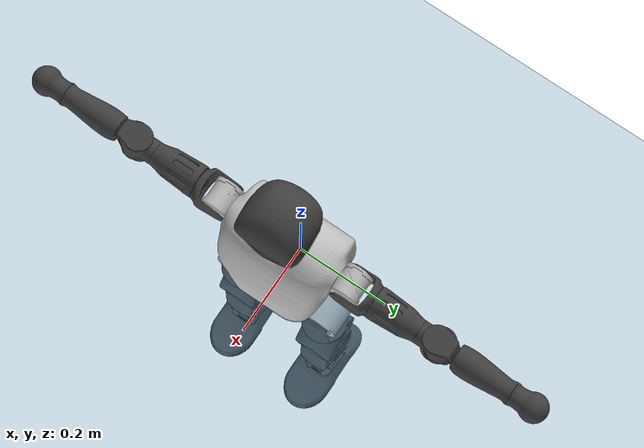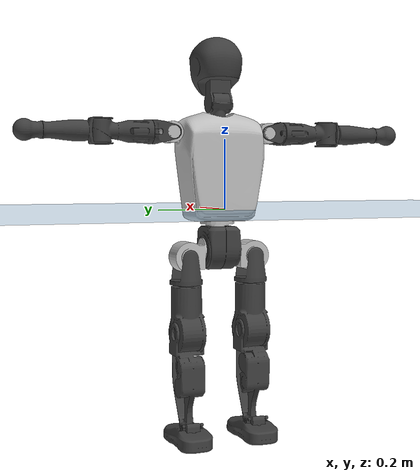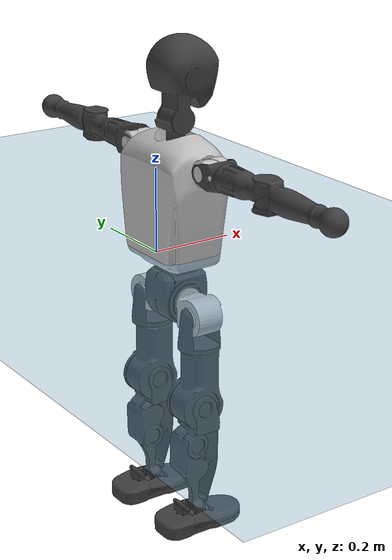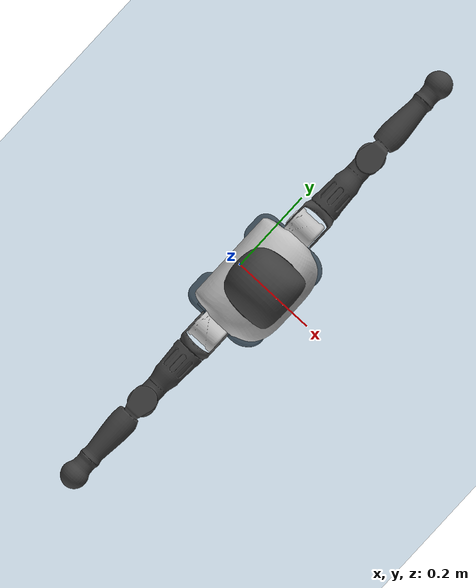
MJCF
<mujoco model="T1">
  <compiler angle="radian" assetdir="assets" balanceinertia="true" inertiafromgeom="false"/>

  <option timestep="0.005" density="1.2" viscosity="2e-05"/>

  <size nkey="1"/>

  <visual>
    <quality shadowsize="8192"/>
    <map shadowclip="0.5"/>
  </visual>

  <default>
    <default class="/">
      <joint armature="0.01" damping="0.01" frictionloss="0.1"/>
      <geom contype="0" conaffinity="0" group="1" solref="-1000 -80"/>
      <site size="0.01 0.005 0.005" group="5"/>
      <general forcelimited="true" biastype="affine" gainprm="25" biasprm="0 -25 -0.6"/>
      <default class="t1">
        <geom rgba="0.25 0.25 0.25 1"/>
        <default class="visual">
          <geom type="mesh" group="2"/>
        </default>
        <default class="collision">
          <geom group="3"/>
        </default>
        <default class="foot">
          <geom size="0.1115 0.05 0.015" type="box" condim="6" group="4" priority="1" solimp="0.015 1 0.015"/>
        </default>
        <default class="reward_collision_sphere">
          <geom group="5" rgba="1 0 0 1"/>
        </default>
      </default>
    </default>
  </default>

  <asset>
    <texture type="skybox" colorspace="auto" name="//unnamed_texture_0" builtin="gradient" rgb1="0.95 0.95 0.95" rgb2="0.95 0.95 0.95" width="100" height="600"/>
    <texture type="2d" colorspace="auto" name="texplane" builtin="checker" rgb1="0.345 0.575 0.748" rgb2="0.345 0.575 0.748" markrgb="1 1 1" width="512" height="512"/>
    <material name="MatPlane" class="/" texture="texplane" texuniform="true" texrepeat="2 2" specular="0.9"/>
    <mesh name="Trunk" class="/" file="Trunk.stl"/>
    <mesh name="H1" class="/" file="H1.stl"/>
    <mesh name="H2" class="/" file="H2.stl"/>
    <mesh name="AL1" class="/" file="AL1.stl"/>
    <mesh name="AL2" class="/" file="AL2.stl"/>
    <mesh name="AL3" class="/" file="AL3.stl"/>
    <mesh name="left_hand_link" class="/" file="left_hand_link.stl"/>
    <mesh name="AR1" class="/" file="AR1.stl"/>
    <mesh name="AR2" class="/" file="AR2.stl"/>
    <mesh name="AR3" class="/" file="AR3.stl"/>
    <mesh name="right_hand_link" class="/" file="right_hand_link.stl"/>
    <mesh name="Waist" class="/" file="Waist.stl"/>
    <mesh name="Hip_Pitch_Left" class="/" file="Hip_Pitch_Left.stl"/>
    <mesh name="Hip_Roll_Left" class="/" file="Hip_Roll_Left.stl"/>
    <mesh name="Hip_Yaw_Left" class="/" file="Hip_Yaw_Left.stl"/>
    <mesh name="Shank_Left" class="/" file="Shank_Left.stl"/>
    <mesh name="Ankle_Cross_Left" class="/" file="Ankle_Cross_Left.stl"/>
    <mesh name="left_foot_link" class="/" file="left_foot_link.stl"/>
    <mesh name="Hip_Pitch_Right" class="/" file="Hip_Pitch_Right.stl"/>
    <mesh name="Hip_Roll_Right" class="/" file="Hip_Roll_Right.stl"/>
    <mesh name="Hip_Yaw_Right" class="/" file="Hip_Yaw_Right.stl"/>
    <mesh name="Shank_Right" class="/" file="Shank_Right.stl"/>
    <mesh name="Ankle_Cross_Right" class="/" file="Ankle_Cross_Right.stl"/>
    <mesh name="right_foot_link" class="/" file="right_foot_link.stl"/>
  </asset>

  <worldbody>
    <geom name="floor" class="/" size="100 100 0.125" type="plane" group="0" material="MatPlane"/>
    <light name="toplight_shadow" class="/" pos="0 0 5" dir="0.0990148 0.0990148 -0.990148" type="directional" ambient="0.04 0.04 0.04" diffuse="0.55 0.55 0.55" specular="0.12 0.12 0.12"/>
    <light name="toplight_fill" class="/" pos="0 0 5" dir="0.0990148 0.0990148 -0.990148" type="directional" castshadow="false" ambient="0.04 0.04 0.04" diffuse="0.3 0.3 0.3" specular="0.08 0.08 0.08"/>
    <body name="trunk" childclass="t1" pos="-0.000279801 -0.000446823 -0.000742808" quat="1 -0.00010486 0.000201358 -0.000130282">
      <inertial pos="0.0472043 -0.000592278 0.105331" quat="0.99996 9.56338e-06 -0.00898713 -1.75818e-05" mass="9.66356" diaginertia="0.0399717 0.0582005 0.0578651"/>
      <joint name="//unnamed_joint_0" type="free" armature="0" damping="0" frictionloss="0"/>
      <geom name="//unnamed_geom_1" class="visual" rgba="0.76 0.76 0.76 1" mesh="Trunk"/>
      <geom name="//unnamed_geom_2" class="collision" size="0.0700295 0.0933727 0.140059" pos="0.0508803 0 0.120828" type="box"/>
      <geom name="//unnamed_geom_3" class="reward_collision_sphere" size="0.107379" pos="0.0508803 0 0.10069"/>
      <geom name="//unnamed_geom_4" class="reward_collision_sphere" size="0.0140059" pos="0.0508803 0.0804338 0"/>
      <geom name="//unnamed_geom_5" class="reward_collision_sphere" size="0.0140059" pos="0.0508803 -0.0804338 0"/>
      <geom name="//unnamed_geom_6" class="reward_collision_sphere" size="0.0140059" pos="0.0508803 0.101252 0.181241"/>
      <geom name="//unnamed_geom_7" class="reward_collision_sphere" size="0.0140059" pos="0.0508803 -0.101252 0.181241"/>
      <site name="imu" pos="-0.00418627 0.00497305 -0.00371974" size="0.00933727"/>
      <camera name="track" pos="0 -1.89256 0" quat="0.707107 0.707107 0 0" mode="trackcom"/>
      <camera name="ego_camera" pos="0.103457 0 0.422896" quat="-0.5 -0.5 0.5 0.5"/>
      <body name="H1" pos="0.0525567 -0.00060644 0.244881" quat="1 -1.32042e-05 -9.14043e-05 -0.000360612">
        <inertial pos="-0.00112307 -0.00166856 0.0574672" quat="0.763956 -0.0121917 0.0040084 0.645141" mass="0.36786" diaginertia="0.000106651 0.00016974 0.000155633"/>
        <joint name="AAHead_yaw" pos="0 0 0" axis="0.0031839 0.00331969 0.999989" stiffness="0.00237482" range="-1.56008 1.57498" armature="0.00974939" damping="0.00471709" frictionloss="0.0941399"/>
        <geom name="//unnamed_geom_8" class="visual" mesh="H1"/>
        <body name="H2" pos="0.000768512 0.000668363 0.0620924" quat="1 0.000232207 -0.00038009 -0.000219935">
          <inertial pos="0.0062142 0.00096395 0.0995834" quat="0.988502 0.106256 -0.0723728 -0.0795986" mass="0.513335" diaginertia="0.000891335 0.00146838 0.00176574"/>
          <joint name="Head_pitch" pos="0 0 0" axis="0.00143095 -0.999997 -0.00209134" range="-1.23196 0.367686" armature="0.00889687" damping="0.00997263" frictionloss="0.0915942"/>
          <geom name="//unnamed_geom_9" class="visual" mesh="H2"/>
          <geom name="//unnamed_geom_10" class="collision" size="0.0746982" pos="0.00848005 0 0.110759"/>
          <geom name="//unnamed_geom_11" class="reward_collision_sphere" size="0.0840354" pos="0.0169601 0 0.10069"/>
        </body>
      </body>
      <body name="AL1" pos="0.0494131 0.101065 0.220266" quat="1 -8.21823e-05 0.000427021 -8.81679e-05">
        <inertial pos="-0.000665256 0.0421744 1.91207e-05" quat="0.505907 0.496278 -0.503777 0.493939" mass="0.430851" diaginertia="0.000593139 0.000988293 0.00030541"/>
        <joint name="Left_Shoulder_Pitch" pos="0 0 0" axis="-0.000219587 0.999994 -0.00340397" range="-3.32434 1.21815" armature="0.00942948" damping="0.00584998" frictionloss="0.0973162"/>
        <geom name="//unnamed_geom_12" class="visual" rgba="0.76 0.76 0.76 1" mesh="AL1"/>
        <body name="AL2" pos="0.00178216 0.0444397 3.40551e-05" quat="1 4.39624e-05 -9.25397e-05 -6.02965e-06">
          <inertial pos="0.00361226 0.0355142 -1.16676e-07" quat="0.489039 0.51096 -0.488431 0.511073" mass="0.129503" diaginertia="0.000174005 0.000258181 0.000179004"/>
          <joint name="Left_Shoulder_Roll" pos="0 0 0" axis="-0.999996 0.00162801 0.00227615" range="-1.55801 1.75499" armature="0.00898912" damping="0.00897111" frictionloss="0.0938953"/>
          <geom name="//unnamed_geom_13" class="visual" mesh="AL2"/>
          <body name="AL3" pos="0.000344588 0.0572864 0.000103752" quat="1 2.99216e-05 0.000129077 -0.000131343">
            <inertial pos="-0.00105875 0.0807411 -0.000313478" quat="0.707961 0.70624 0.00174486 -0.00363914" mass="0.828875" diaginertia="0.00570863 0.00965002 0.00063596"/>
            <joint name="Left_Elbow_Pitch" pos="0 0 0" axis="0.00598152 -0.999982 -0.000521532" range="-2.25545 2.26398" armature="0.00869284" damping="0.00222141" frictionloss="0.0961382"/>
            <geom name="//unnamed_geom_14" class="visual" mesh="AL3"/>
            <geom name="//unnamed_geom_15" class="collision" size="0.0280118 0.0700295" pos="0 0.047314 0" quat="0.707105 0.707108 0 0" type="cylinder"/>
            <geom name="//unnamed_geom_16" class="reward_collision_sphere" size="0.0336142"/>
            <body name="left_hand_link" pos="0.00110981 0.139082 8.5743e-05" quat="1 0.000257705 3.83571e-06 0.000367028">
              <inertial pos="0.000239106 0.104313 -0.000499204" quat="0.707865 0.706347 -6.43607e-05 -0.000196554" mass="0.263913" diaginertia="0.00358204 0.00618514 0.000218753"/>
              <joint name="Left_Elbow_Yaw" pos="0 0 0" axis="0.00668014 0.00343391 0.999972" stiffness="0.0023646" range="-2.42737 -0.00243358" armature="0.00970637" damping="0.0115437" frictionloss="0.0976745"/>
              <geom name="//unnamed_geom_17" class="visual" mesh="left_hand_link"/>
              <geom name="//unnamed_geom_18" class="collision" size="0.0280118 0.0817011" pos="0 0.123016 0" quat="0.707105 0.707108 0 0" type="cylinder"/>
              <geom name="//unnamed_geom_19" class="reward_collision_sphere" size="0.0466864"/>
              <geom name="//unnamed_geom_20" class="reward_collision_sphere" size="0.0326805" pos="0 0.104091 0"/>
              <geom name="//unnamed_geom_21" class="reward_collision_sphere" size="0.0326805" pos="0 0.20345 0"/>
            </body>
          </body>
        </body>
      </body>
      <body name="AR1" pos="0.0482484 -0.100784 0.219993" quat="1 3.70671e-05 0.000294902 -0.000250645">
        <inertial pos="-0.00175066 -0.0431302 -0.000650871" quat="0.506272 0.492697 -0.501084 0.499853" mass="0.42466" diaginertia="0.000603954 0.000988761 0.000304996"/>
        <joint name="Right_Shoulder_Pitch" pos="0 0 0" axis="0.000171433 -0.999999 0.0015722" range="-1.2246 3.30618" armature="0.00928444" damping="0.00465151" frictionloss="0.0962405"/>
        <geom name="//unnamed_geom_22" class="visual" rgba="0.76 0.76 0.76 1" mesh="AR1"/>
        <body name="AR2" pos="-0.000734432 -0.0434635 0.000196052" quat="1 -2.19394e-06 -4.77264e-06 -0.000198601">
          <inertial pos="0.00272874 -0.0354509 -0.000552766" quat="0.51165 0.48799 -0.512062 0.487722" mass="0.130458" diaginertia="0.000175796 0.000263398 0.000180747"/>
          <joint name="Right_Shoulder_Roll" pos="0 0 0" axis="-0.999994 -0.00304105 -0.00151474" stiffness="0.00343707" range="-1.75874 1.59186" armature="0.00951043" damping="0.00372504" frictionloss="0.0957475"/>
          <geom name="//unnamed_geom_23" class="visual" mesh="AR2"/>
          <body name="AR3" pos="-0.000662764 -0.0579641 0.000382904" quat="1 -2.54346e-05 5.11982e-05 0.000102935">
            <inertial pos="-0.000337793 -0.0815781 2.44481e-05" quat="0.709283 0.704922 -0.00155714 -6.09966e-05" mass="0.83476" diaginertia="0.00558979 0.00979242 0.000641512"/>
            <joint name="Right_Elbow_Pitch" pos="0 0 0" axis="0.00398366 0.999992 0.000508508" range="-2.28937 2.278" armature="0.00936199" damping="0.00695091" frictionloss="0.0931328"/>
            <geom name="//unnamed_geom_24" class="visual" mesh="AR3"/>
            <geom name="//unnamed_geom_25" class="collision" size="0.0280118 0.0700295" pos="0 -0.047314 0" quat="0.707105 0.707108 0 0" type="cylinder"/>
            <geom name="//unnamed_geom_26" class="reward_collision_sphere" size="0.0336142"/>
            <body name="right_hand_link" pos="-0.000969427 -0.139234 -0.000786053" quat="1 0.000216362 0.000177952 -0.00020019">
              <inertial pos="8.83786e-05 -0.104075 0.00136851" quat="0.706774 0.707439 0.000346805 0.000228015" mass="0.267654" diaginertia="0.00358606 0.0061684 0.000224048"/>
              <joint name="Right_Elbow_Yaw" pos="0 0 0" axis="0.00306586 0.00238602 0.999992" range="0.00890777 2.4354" armature="0.00942935" damping="0.011542" frictionloss="0.0899703"/>
              <geom name="//unnamed_geom_27" class="visual" mesh="right_hand_link"/>
              <geom name="//unnamed_geom_28" class="collision" size="0.0280118 0.0817011" pos="0 -0.123016 0" quat="0.707105 0.707108 0 0" type="cylinder"/>
              <geom name="//unnamed_geom_29" class="reward_collision_sphere" size="0.0466864"/>
              <geom name="//unnamed_geom_30" class="reward_collision_sphere" size="0.0326805" pos="0 -0.104091 0"/>
              <geom name="//unnamed_geom_31" class="reward_collision_sphere" size="0.0326805" pos="0 -0.20345 0"/>
            </body>
          </body>
        </body>
      </body>
      <body name="Waist" pos="0.0535172 -0.00180336 -0.116046" quat="1 3.29868e-05 -7.21624e-06 8.05778e-06">
        <inertial pos="0.000362259 -0.00126679 0.00744616" quat="0.983781 0.00021891 -0.179343 0.00329853" mass="2.11318" diaginertia="0.0023304 0.00403121 0.00487432"/>
        <joint name="Waist" pos="0 0 0" axis="0.00140726 0.00481055 0.999987" range="-1.57725 1.57538" armature="0.00975723" damping="0.0168693" frictionloss="0.0929163"/>
        <geom name="//unnamed_geom_32" class="visual" mesh="Waist"/>
        <body name="Hip_Pitch_Left" pos="-0.000231818 0.099943 -0.000677402" quat="1 0.000112166 0.000759097 -0.000639566">
          <inertial pos="0.00134037 -0.00636321 -0.0180481" quat="0.974857 0.222382 0.0139504 0.00238298" mass="0.811283" diaginertia="0.000781419 0.00109033 0.00129486"/>
          <joint name="Left_Hip_Pitch" pos="0 0 0" axis="0.00231197 0.999996 -0.00140792" stiffness="0.00174117" range="-1.80051 1.56553" armature="0.00950852" damping="0.00804237" frictionloss="0.0982918"/>
          <geom name="//unnamed_geom_33" class="visual" rgba="0.76 0.76 0.76 1" mesh="Hip_Pitch_Left"/>
          <body name="Hip_Roll_Left" pos="0.00144444 0.000803699 -0.0218891" quat="1 -0.000547122 -0.000109481 -0.000223059">
            <inertial pos="0.000477343 0.000992655 -0.0548821" quat="0.706416 -0.00628813 -0.00608283 0.707742" mass="0.316718" diaginertia="0.00075979 0.0011509 0.000532943"/>
            <joint name="Left_Hip_Roll" pos="0 0 0" axis="-0.999998 0.000426114 0.00170352" range="-1.56663 0.197127" armature="0.009062" damping="0.0100394" frictionloss="0.0929765"/>
            <geom name="//unnamed_geom_34" class="visual" mesh="Hip_Roll_Left"/>
            <geom name="//unnamed_geom_35" class="reward_collision_sphere" size="0.051355"/>
            <body name="Hip_Yaw_Left" pos="0.00212694 -0.00148325 -0.0838486" quat="1 -0.0001069 3.74398e-06 -7.58085e-05">
              <inertial pos="-0.00625432 0.000955614 -0.0892723" quat="0.696849 -0.0338498 -0.0316845 0.715718" mass="1.7478" diaginertia="0.0111726 0.0190074 0.00267076"/>
              <joint name="Left_Hip_Yaw" pos="0 0 0" axis="0.000980148 0.00130001 -0.999999" range="-1.00235 1.01169" armature="0.0093721" damping="0.014017" frictionloss="0.0897569"/>
              <geom name="//unnamed_geom_36" class="visual" mesh="Hip_Yaw_Left"/>
              <geom name="//unnamed_geom_37" class="collision" size="0.0466864 0.0746982" type="cylinder"/>
              <body name="Shank_Left" pos="-0.0101184 0.000599261 -0.134459" quat="1 -0.00012662 -5.41909e-05 -0.000149633">
                <inertial pos="-0.0048766 0.00142663 -0.12596" quat="0.997622 0.00370764 -0.0238305 0.0645596" mass="1.39387" diaginertia="0.0151786 0.0257845 0.00191407"/>
                <joint name="Left_Knee_Pitch" pos="0 0 0" axis="-0.00229364 0.999997 -0.00130511" range="0.000255171 2.33692" armature="0.00914236" damping="0.0131562" frictionloss="0.0937775"/>
                <geom name="//unnamed_geom_38" class="visual" mesh="Shank_Left"/>
                <geom name="//unnamed_geom_39" class="collision" size="0.0466864 0.0700295" pos="0 0 -0.120828" type="cylinder"/>
                <geom name="//unnamed_geom_40" class="reward_collision_sphere" size="0.0606923"/>
                <body name="Ankle_Cross_Left" pos="-0.00103291 0.000245996 -0.282215" quat="1 -1.04137e-05 -0.000125428 -0.000374321">
                  <inertial pos="-0.00326183 -0.000148071 -0.0083079" quat="0.442738 0.55269 0.550355 0.442296" mass="0.0602166" diaginertia="1.26993e-05 1.95049e-05 1.17528e-05"/>
                  <joint name="Left_Ankle_Pitch" pos="0 0 0" axis="-9.83943e-05 1 6.20223e-05" range="-0.891119 0.366521" armature="0.00891544" damping="0.000593508" frictionloss="0.089199"/>
                  <geom name="//unnamed_geom_41" class="visual" mesh="Ankle_Cross_Left"/>
                  <body name="left_foot_link" pos="0.000340028 0.000714497 -0.0127645" quat="1 -2.4813e-05 -0.0003393 0.000451252">
                    <inertial pos="-8.96787e-05 0.000320172 -0.00907943" quat="-0.00114509 0.620436 -0.000467071 0.784256" mass="0.570173" diaginertia="0.00121951 0.0018387 0.00234837"/>
                    <joint name="Left_Ankle_Roll" pos="0 0 0" axis="-0.999993 0.00201571 0.00315221" range="-0.441746 0.462305" armature="0.00941574" damping="0.00830646" frictionloss="0.100812"/>
                    <geom name="//unnamed_geom_42" class="visual" mesh="left_foot_link"/>
                    <geom name="left_foot" class="foot" size="0.103461 0.0458653 0.015131" pos="0.00848005 0 -0.0151034"/>
                    <geom name="//unnamed_geom_44" class="reward_collision_sphere" size="0.0485538" pos="0.00848005 0 -0.0151034"/>
                    <geom name="//unnamed_geom_45" class="reward_collision_sphere" size="0.0280118" pos="0.0805605 -0.0217644 -0.0151034"/>
                    <geom name="//unnamed_geom_46" class="reward_collision_sphere" size="0.0280118" pos="-0.0593603 -0.0217644 -0.0151034"/>
                    <site name="left_foot" class="foot" pos="0.00848005 0 -0.0151034" size="0.00933727"/>
                  </body>
                </body>
              </body>
            </body>
          </body>
        </body>
        <body name="Hip_Pitch_Right" pos="-0.00037637 -0.100335 4.30269e-05" quat="1 0.000157631 0.000144779 4.39033e-05">
          <inertial pos="0.00100236 0.00716731 -0.0171475" quat="0.973806 -0.226603 0.016418 -0.00918843" mass="0.824978" diaginertia="0.000779768 0.00107961 0.00127926"/>
          <joint name="Right_Hip_Pitch" pos="0 0 0" axis="-0.0017607 -0.999998 9.62099e-05" range="-1.57585 1.81824" armature="0.00917967" damping="0.00706363" frictionloss="0.0943208"/>
          <geom name="//unnamed_geom_47" class="visual" rgba="0.76 0.76 0.76 1" mesh="Hip_Pitch_Right"/>
          <body name="Hip_Roll_Right" pos="-0.000594277 -0.000328248 -0.0206894" quat="1 -3.04903e-05 -3.44211e-05 -4.52503e-06">
            <inertial pos="0.00116218 -0.00115588 -0.0541423" quat="0.70613 -0.0051275 -0.0074619 0.708024" mass="0.31535" diaginertia="0.000763824 0.00115132 0.000532669"/>
            <joint name="Right_Hip_Roll" pos="0 0 0" axis="-1 0.00029148 -0.000829382" range="-0.211868 1.5672" armature="0.00980437" damping="0.0060289" frictionloss="0.0943415"/>
            <geom name="//unnamed_geom_48" class="visual" mesh="Hip_Roll_Right"/>
            <geom name="//unnamed_geom_49" class="reward_collision_sphere" size="0.051355"/>
            <body name="Hip_Yaw_Right" pos="5.73399e-05 0.00135937 -0.0827217" quat="1 -1.97465e-05 -2.19907e-06 8.81916e-06">
              <inertial pos="-0.00518863 -0.000326821 -0.0911873" quat="0.714117 -0.0318893 -0.0339479 0.698475" mass="1.7786" diaginertia="0.0113185 0.0194113 0.00271194"/>
              <joint name="Right_Hip_Yaw" pos="0 0 0" axis="0.00434354 0.00220201 -0.999988" stiffness="0.000608262" range="-0.999271 1.02257" armature="0.00935585" damping="0.0124775" frictionloss="0.092891"/>
              <geom name="//unnamed_geom_50" class="visual" mesh="Hip_Yaw_Right"/>
              <geom name="//unnamed_geom_51" class="collision" size="0.0466864 0.0746982" type="cylinder"/>
              <body name="Shank_Right" pos="-0.0122612 -0.000705865 -0.135798" quat="1 -4.16819e-06 -3.73742e-05 -1.23147e-05">
                <inertial pos="-0.0038182 -0.0001524 -0.122638" quat="0.99926 -0.000668423 -0.0234713 -0.0304805" mass="1.46863" diaginertia="0.0154209 0.0266023 0.00203583"/>
                <joint name="Right_Knee_Pitch" pos="0 0 0" axis="0.00897377 -0.999955 0.00315118" range="-2.33682 0.00689403" armature="0.00895895" damping="0.0057504" frictionloss="0.0921052"/>
                <geom name="//unnamed_geom_52" class="visual" mesh="Shank_Right"/>
                <geom name="//unnamed_geom_53" class="collision" size="0.0466864 0.0700295" pos="0 0 -0.120828" type="cylinder"/>
                <geom name="//unnamed_geom_54" class="reward_collision_sphere" size="0.0606923"/>
                <body name="Ankle_Cross_Right" pos="0.00140608 -0.0018279 -0.282364" quat="1 0.000453314 0.000129209 0.00015255">
                  <inertial pos="-0.0034771 -6.41922e-06 -0.00853214" quat="0.442251 0.551457 0.55143 0.442983" mass="0.0591314" diaginertia="1.26279e-05 1.94437e-05 1.17941e-05"/>
                  <joint name="Right_Ankle_Pitch" pos="0 0 0" axis="-0.000951438 -0.999998 0.00155072" range="-0.33133 0.890293" armature="0.00939786" damping="0.00635314" frictionloss="0.0935637"/>
                  <geom name="//unnamed_geom_55" class="visual" mesh="Ankle_Cross_Right"/>
                  <body name="right_foot_link" pos="1.57914e-05 -0.00087501 -0.011478" quat="1 -2.09815e-06 -4.51932e-05 -6.50429e-05">
                    <inertial pos="0.000306559 -0.000474093 -0.00925985" quat="0.000187673 0.620082 0.000754389 0.784536" mass="0.557212" diaginertia="0.00116873 0.00182364 0.00227473"/>
                    <joint name="Right_Ankle_Roll" pos="0 0 0" axis="-1 -0.000149966 -0.000501178" range="-0.457763 0.458012" armature="0.00920188" damping="0.00921406" frictionloss="0.0947383"/>
                    <geom name="//unnamed_geom_56" class="visual" mesh="right_foot_link"/>
                    <geom name="right_foot" class="foot" size="0.0988084 0.0450059 0.014009" pos="0.00848005 0 -0.0151034"/>
                    <geom name="//unnamed_geom_58" class="reward_collision_sphere" size="0.0373491"/>
                    <geom name="//unnamed_geom_59" class="reward_collision_sphere" size="0.0280118" pos="0.00848005 0 -0.0151034"/>
                    <geom name="//unnamed_geom_60" class="reward_collision_sphere" size="0.0280118" pos="0.0805605 0.0217644 -0.0151034"/>
                    <geom name="//unnamed_geom_61" class="reward_collision_sphere" size="0.0280118" pos="-0.0593603 0.0217644 -0.0151034"/>
                    <site name="right_foot" class="foot" pos="0.00848005 0 -0.0151034" size="0.00933727"/>
                  </body>
                </body>
              </body>
            </body>
          </body>
        </body>
      </body>
    </body>
  </worldbody>

  <contact>
    <pair class="/" geom1="floor" geom2="left_foot" name="//unnamed_contact_0"/>
    <pair class="/" geom1="floor" geom2="right_foot" name="//unnamed_contact_1"/>
  </contact>

  <actuator>
    <general name="AAHead_yaw" class="/" joint="AAHead_yaw" forcerange="-6.59015 6.59015" gainprm="22.7145" biasprm="0 -22.7145 -0.561677"/>
    <general name="Head_pitch" class="/" joint="Head_pitch" forcerange="-6.5839 6.5839" gainprm="22.7145" biasprm="0 -22.7145 -0.561677"/>
    <general name="Left_Shoulder_Pitch" class="/" joint="Left_Shoulder_Pitch" forcerange="-16.9132 16.9132" gainprm="22.7145" biasprm="0 -22.7145 -0.561677"/>
    <general name="Left_Shoulder_Roll" class="/" joint="Left_Shoulder_Roll" forcerange="-17.3065 17.3065" gainprm="22.7145" biasprm="0 -22.7145 -0.561677"/>
    <general name="Left_Elbow_Pitch" class="/" joint="Left_Elbow_Pitch" forcerange="-16.1958 16.1958" gainprm="22.7145" biasprm="0 -22.7145 -0.561677"/>
    <general name="Left_Elbow_Yaw" class="/" joint="Left_Elbow_Yaw" forcerange="-17.2165 17.2165" gainprm="22.7145" biasprm="0 -22.7145 -0.561677"/>
    <general name="Right_Shoulder_Pitch" class="/" joint="Right_Shoulder_Pitch" forcerange="-17.3586 17.3586" gainprm="22.7145" biasprm="0 -22.7145 -0.561677"/>
    <general name="Right_Shoulder_Roll" class="/" joint="Right_Shoulder_Roll" forcerange="-17.2793 17.2793" gainprm="22.7145" biasprm="0 -22.7145 -0.561677"/>
    <general name="Right_Elbow_Pitch" class="/" joint="Right_Elbow_Pitch" forcerange="-16.8492 16.8492" gainprm="22.7145" biasprm="0 -22.7145 -0.561677"/>
    <general name="Right_Elbow_Yaw" class="/" joint="Right_Elbow_Yaw" forcerange="-16.7613 16.7613" gainprm="22.7145" biasprm="0 -22.7145 -0.561677"/>
    <general name="Waist" class="/" joint="Waist" forcerange="-28.4596 28.4596" gainprm="22.7145" biasprm="0 -22.7145 -0.561677"/>
    <general name="Left_Hip_Pitch" class="/" joint="Left_Hip_Pitch" forcerange="-43.0042 43.0042" gainprm="22.7145" biasprm="0 -22.7145 -0.561677"/>
    <general name="Left_Hip_Roll" class="/" joint="Left_Hip_Roll" forcerange="-28.6666 28.6666" gainprm="22.7145" biasprm="0 -22.7145 -0.561677"/>
    <general name="Left_Hip_Yaw" class="/" joint="Left_Hip_Yaw" forcerange="-26.9169 26.9169" gainprm="22.7145" biasprm="0 -22.7145 -0.561677"/>
    <general name="Left_Knee_Pitch" class="/" joint="Left_Knee_Pitch" forcerange="-53.3521 53.3521" gainprm="22.7145" biasprm="0 -22.7145 -0.561677"/>
    <general name="Left_Ankle_Pitch" class="/" joint="Left_Ankle_Pitch" forcerange="-18.7836 18.7836" gainprm="22.7145" biasprm="0 -22.7145 -0.561677"/>
    <general name="Left_Ankle_Roll" class="/" joint="Left_Ankle_Roll" forcerange="-13.9733 13.9733" gainprm="22.7145" biasprm="0 -22.7145 -0.561677"/>
    <general name="Right_Hip_Pitch" class="/" joint="Right_Hip_Pitch" forcerange="-41.6232 41.6232" gainprm="22.7145" biasprm="0 -22.7145 -0.561677"/>
    <general name="Right_Hip_Roll" class="/" joint="Right_Hip_Roll" forcerange="-27.787 27.787" gainprm="22.7145" biasprm="0 -22.7145 -0.561677"/>
    <general name="Right_Hip_Yaw" class="/" joint="Right_Hip_Yaw" forcerange="-27.0663 27.0663" gainprm="22.7145" biasprm="0 -22.7145 -0.561677"/>
    <general name="Right_Knee_Pitch" class="/" joint="Right_Knee_Pitch" forcerange="-56.2648 56.2648" gainprm="22.7145" biasprm="0 -22.7145 -0.561677"/>
    <general name="Right_Ankle_Pitch" class="/" joint="Right_Ankle_Pitch" forcerange="-18.5697 18.5697" gainprm="22.7145" biasprm="0 -22.7145 -0.561677"/>
    <general name="Right_Ankle_Roll" class="/" joint="Right_Ankle_Roll" forcerange="-13.9867 13.9867" gainprm="22.7145" biasprm="0 -22.7145 -0.561677"/>
  </actuator>

  <sensor>
    <gyro site="imu" name="imu_angular_velocity"/>
    <velocimeter site="imu" name="imu_linear_velocity"/>
    <framelinvel objtype="site" objname="left_foot" name="left_foot_global_linear_velocity"/>
    <framelinvel objtype="site" objname="right_foot" name="right_foot_global_linear_velocity"/>
  </sensor>

  <keyframe>
    <key name="home" qpos="0 0 0.6385 1 0 0 0 0 0 0 1.4 0 -0.4 0 -1.4 0 0.4 0 -0.4 0 0 0.8 -0.4 0 0.4 0 0 -0.8 0.4 0"/>
  </keyframe>
</mujoco>
